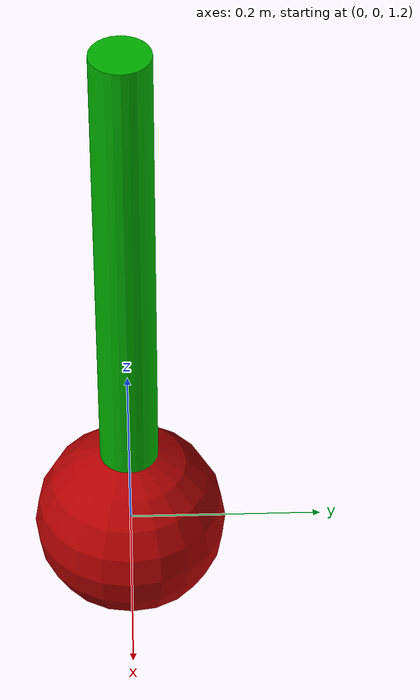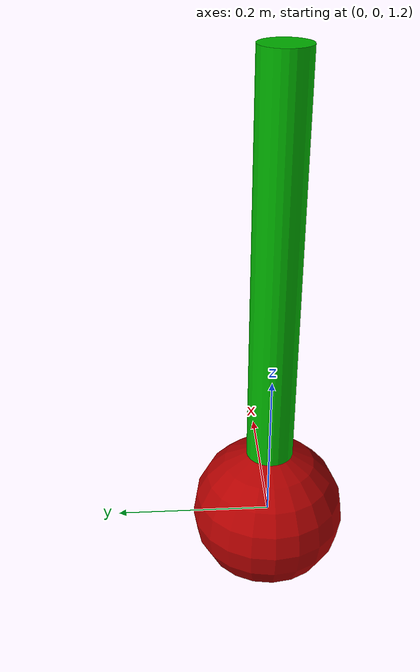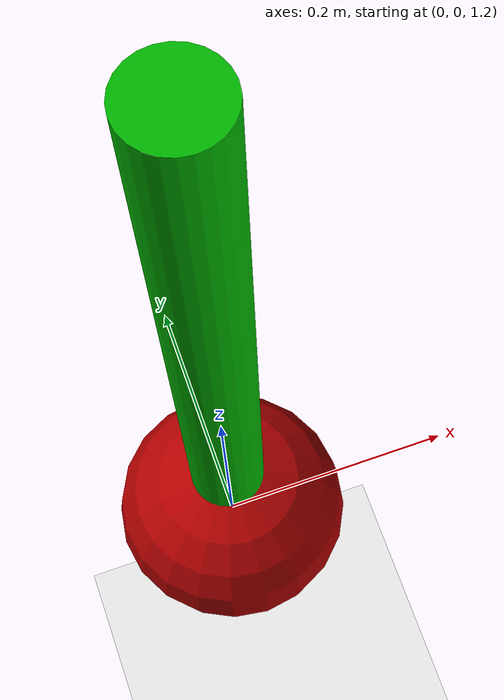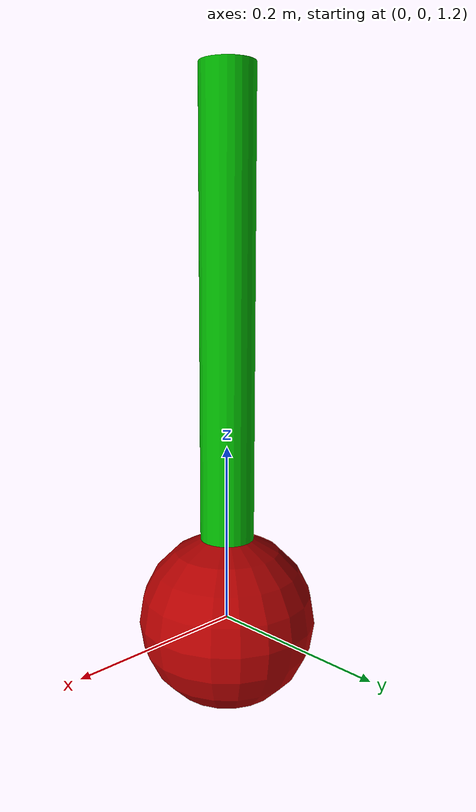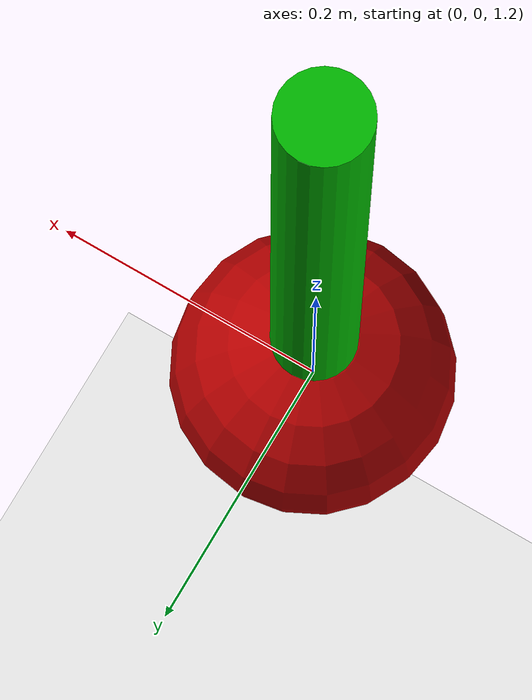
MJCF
<mujoco model="simple_pendulum">
<!-- We increased the timestep to 10ms (0.01) and kept RK4 -->
<option gravity="0 0 -9.81" timestep="0.01" integrator="RK4"/>
    <worldbody>
        <light diffuse=".5 .5 .5" pos="0 0 3" dir="0 0 -1"/>
        <geom type="plane" size="2 2 0.1" rgba=".9 .9 .9 1"/>

        <body name="arm" pos="0 0 1.5">
<!-- Changed damping from 0.1 to 0 -->
            <joint name="prop_joint" type="hinge" axis="0 1 0" damping="0"/>            <geom type="cylinder" size="0.03 0.3" rgba="0 .7 0 1" mass="1"/>

            <body name="weight" pos="0 0 -0.3">
                <geom type="sphere" size="0.1" rgba="0.7 0 0 1" mass="5"/>
            </body>
        </body>
    </worldbody>

    <actuator>
        <motor name="joint_motor" joint="prop_joint" gear="5000"/>
    </actuator>
</mujoco>
